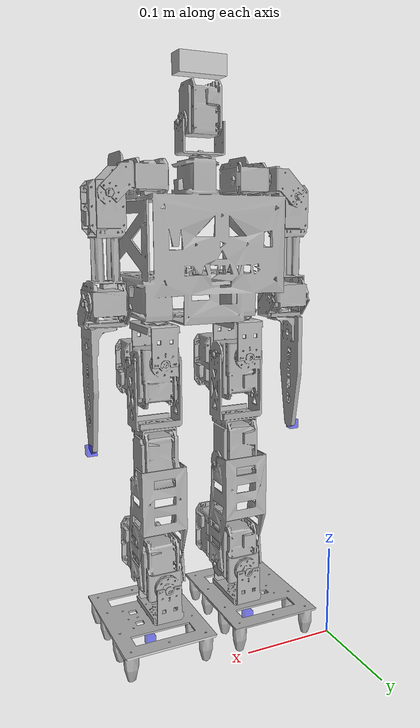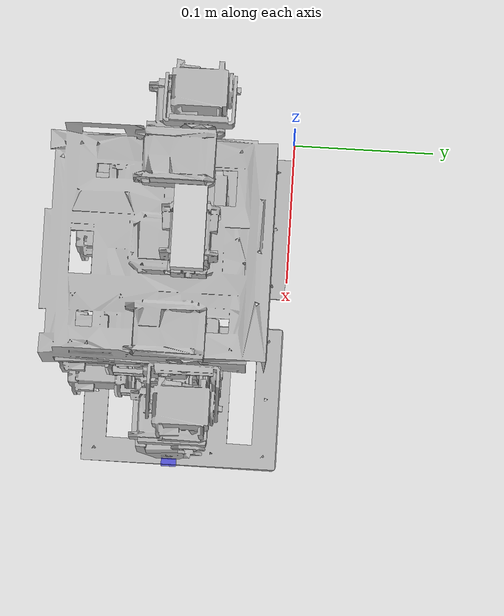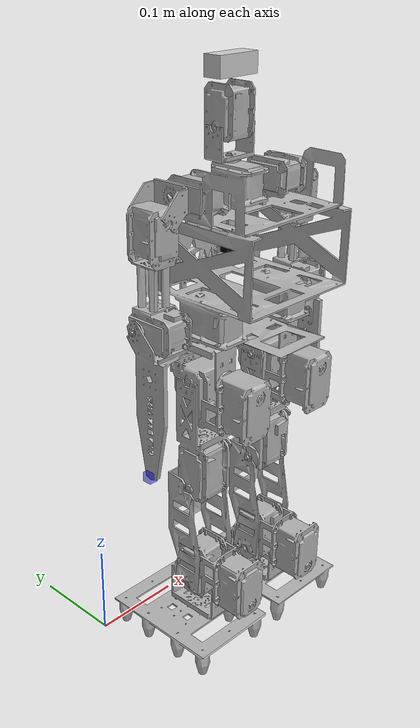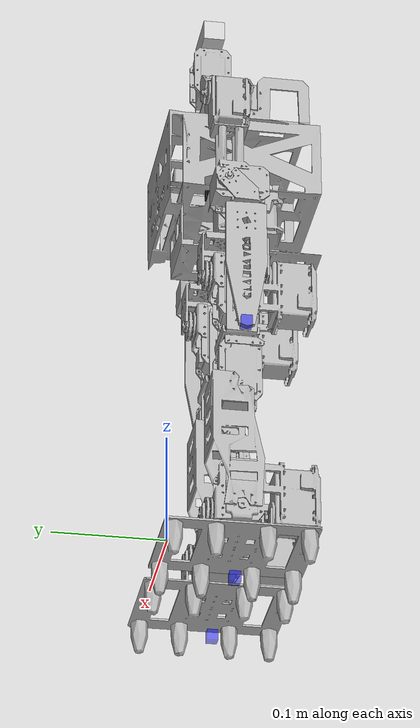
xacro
<?xml version="1.0" ?>
<robot name="darnet" xmlns:xacro="http://www.ros.org/wiki/xacro">

<xacro:include filename="$(find darnet_description)/urdf/materials.xacro" />
<xacro:include filename="$(find darnet_description)/urdf/darnet.trans" />
<xacro:include filename="$(find darnet_description)/urdf/darnet.gazebo" />

<link name="base_link">
  <inertial>
    <origin xyz="0.12558372774814963 -0.07386522357602478 0.43247306079321574" rpy="0 0 0"/>
    <mass value="1.2606121985073475"/>
    <inertia ixx="0.00507" iyy="0.006653" izz="0.003975" ixy="-1e-06" iyz="-0.00033" ixz="1e-06"/>
  </inertial>
  <visual>
    <origin xyz="0 0 0" rpy="0 0 0"/>
    <geometry>
      <mesh filename="file://$(find darnet_description)/meshes/base_link.stl" scale="0.001 0.001 0.001"/>
    </geometry>
    <material name="silver"/>
  </visual>
  <collision>
    <origin xyz="0 0 0" rpy="0 0 0"/>
    <geometry>
      <mesh filename="file://$(find darnet_description)/meshes/base_link.stl" scale="0.001 0.001 0.001"/>
    </geometry>
  </collision>
</link>

<link name="Konektor_Leher_1">
  <inertial>
    <origin xyz="2.0688434280435875e-06 -0.001021810988626845 0.006993774196732749" rpy="0 0 0"/>
    <mass value="0.004611932609017796"/>
    <inertia ixx="1e-06" iyy="2e-06" izz="2e-06" ixy="-0.0" iyz="-0.0" ixz="-0.0"/>
  </inertial>
  <visual>
    <origin xyz="-0.125659 0.060429 -0.520233" rpy="0 0 0"/>
    <geometry>
      <mesh filename="file://$(find darnet_description)/meshes/Konektor_Leher_1.stl" scale="0.001 0.001 0.001"/>
    </geometry>
    <material name="silver"/>
  </visual>
  <collision>
    <origin xyz="-0.125659 0.060429 -0.520233" rpy="0 0 0"/>
    <geometry>
      <mesh filename="file://$(find darnet_description)/meshes/Konektor_Leher_1.stl" scale="0.001 0.001 0.001"/>
    </geometry>
  </collision>
</link>

<link name="Kepala_4">
  <inertial>
    <origin xyz="-0.023069975045627494 -2.246644797637004e-05 0.011283371892922611" rpy="0 0 0"/>
    <mass value="0.07698316433626436"/>
    <inertia ixx="1.8e-05" iyy="2.2e-05" izz="1.4e-05" ixy="0.0" iyz="0.0" ixz="1e-06"/>
  </inertial>
  <visual>
    <origin xyz="-0.148159 0.060429 -0.548233" rpy="0 0 0"/>
    <geometry>
      <mesh filename="file://$(find darnet_description)/meshes/Kepala_4.stl" scale="0.001 0.001 0.001"/>
    </geometry>
    <material name="silver"/>
  </visual>
  <collision>
    <origin xyz="-0.148159 0.060429 -0.548233" rpy="0 0 0"/>
    <geometry>
      <mesh filename="file://$(find darnet_description)/meshes/Kepala_4.stl" scale="0.001 0.001 0.001"/>
    </geometry>
  </collision>
</link>

<link name="Konektor_Bahu__3">
  <inertial>
    <origin xyz="-0.00606107727430704 -2.4256193310728813e-06 -0.0026281598800894646" rpy="0 0 0"/>
    <mass value="0.013370649638707266"/>
    <inertia ixx="5e-06" iyy="2e-06" izz="5e-06" ixy="0.0" iyz="-0.0" ixz="-0.0"/>
  </inertial>
  <visual>
    <origin xyz="-0.048157 0.060473 -0.495956" rpy="0 0 0"/>
    <geometry>
      <mesh filename="file://$(find darnet_description)/meshes/Konektor_Bahu__3.stl" scale="0.001 0.001 0.001"/>
    </geometry>
    <material name="silver"/>
  </visual>
  <collision>
    <origin xyz="-0.048157 0.060473 -0.495956" rpy="0 0 0"/>
    <geometry>
      <mesh filename="file://$(find darnet_description)/meshes/Konektor_Bahu__3.stl" scale="0.001 0.001 0.001"/>
    </geometry>
  </collision>
</link>

<link name="Lengan_Kiri_1">
  <inertial>
    <origin xyz="-0.00013086119356749137 -0.026506786315672354 -0.05751019466023077" rpy="0 0 0"/>
    <mass value="0.17116519874710012"/>
    <inertia ixx="0.000371" iyy="0.00036" izz="4.1e-05" ixy="1e-06" iyz="-2.7e-05" ixz="-1e-06"/>
  </inertial>
  <visual>
    <origin xyz="-0.025647 0.037983 -0.479956" rpy="0 0 0"/>
    <geometry>
      <mesh filename="file://$(find darnet_description)/meshes/Lengan_Kiri_1.stl" scale="0.001 0.001 0.001"/>
    </geometry>
    <material name="silver"/>
  </visual>
  <collision>
    <origin xyz="-0.025647 0.037983 -0.479956" rpy="0 0 0"/>
    <geometry>
      <mesh filename="file://$(find darnet_description)/meshes/Lengan_Kiri_1.stl" scale="0.001 0.001 0.001"/>
    </geometry>
  </collision>
</link>

<link name="Tangan_Kiri_1">
  <inertial>
    <origin xyz="0.011339328658166777 -0.015504928701510053 -0.06337227994434125" rpy="0 0 0"/>
    <mass value="0.0269625458307887"/>
    <inertia ixx="4.6e-05" iyy="4.6e-05" izz="5e-06" ixy="-0.0" iyz="-1e-06" ixz="-4e-06"/>
  </inertial>
  <visual>
    <origin xyz="-0.002306 0.057344 -0.377156" rpy="0 0 0"/>
    <geometry>
      <mesh filename="file://$(find darnet_description)/meshes/Tangan_Kiri_1.stl" scale="0.001 0.001 0.001"/>
    </geometry>
    <material name="silver"/>
  </visual>
  <collision>
    <origin xyz="-0.002306 0.057344 -0.377156" rpy="0 0 0"/>
    <geometry>
      <mesh filename="file://$(find darnet_description)/meshes/Tangan_Kiri_1.stl" scale="0.001 0.001 0.001"/>
    </geometry>
  </collision>
</link>

<link name="Konektor_Bahu__1">
  <inertial>
    <origin xyz="0.00606151229686161 3.1019412610397423e-06 -0.0026281598800157457" rpy="0 0 0"/>
    <mass value="0.013370649638707266"/>
    <inertia ixx="5e-06" iyy="2e-06" izz="5e-06" ixy="0.0" iyz="0.0" ixz="0.0"/>
  </inertial>
  <visual>
    <origin xyz="-0.202784 0.0604 -0.495956" rpy="0 0 0"/>
    <geometry>
      <mesh filename="file://$(find darnet_description)/meshes/Konektor_Bahu__1.stl" scale="0.001 0.001 0.001"/>
    </geometry>
    <material name="silver"/>
  </visual>
  <collision>
    <origin xyz="-0.202784 0.0604 -0.495956" rpy="0 0 0"/>
    <geometry>
      <mesh filename="file://$(find darnet_description)/meshes/Konektor_Bahu__1.stl" scale="0.001 0.001 0.001"/>
    </geometry>
  </collision>
</link>

<link name="Lengan_Kanan_1">
  <inertial>
    <origin xyz="0.00012193183188854984 -0.026506781431681246 -0.057529773048220934" rpy="0 0 0"/>
    <mass value="0.1711650369680945"/>
    <inertia ixx="0.000371" iyy="0.00036" izz="4.1e-05" ixy="-1e-06" iyz="-2.7e-05" ixz="1e-06"/>
  </inertial>
  <visual>
    <origin xyz="-0.225273 0.037889 -0.479956" rpy="0 0 0"/>
    <geometry>
      <mesh filename="file://$(find darnet_description)/meshes/Lengan_Kanan_1.stl" scale="0.001 0.001 0.001"/>
    </geometry>
    <material name="silver"/>
  </visual>
  <collision>
    <origin xyz="-0.225273 0.037889 -0.479956" rpy="0 0 0"/>
    <geometry>
      <mesh filename="file://$(find darnet_description)/meshes/Lengan_Kanan_1.stl" scale="0.001 0.001 0.001"/>
    </geometry>
  </collision>
</link>

<link name="Tangan_Kanan_1">
  <inertial>
    <origin xyz="-0.011290622269202216 -0.01551524802309219 -0.06343011298331658" rpy="0 0 0"/>
    <mass value="0.02693800769983268"/>
    <inertia ixx="4.6e-05" iyy="4.6e-05" izz="5e-06" ixy="0.0" iyz="-1e-06" ixz="4e-06"/>
  </inertial>
  <visual>
    <origin xyz="-0.248632 0.057228 -0.377156" rpy="0 0 0"/>
    <geometry>
      <mesh filename="file://$(find darnet_description)/meshes/Tangan_Kanan_1.stl" scale="0.001 0.001 0.001"/>
    </geometry>
    <material name="silver"/>
  </visual>
  <collision>
    <origin xyz="-0.248632 0.057228 -0.377156" rpy="0 0 0"/>
    <geometry>
      <mesh filename="file://$(find darnet_description)/meshes/Tangan_Kanan_1.stl" scale="0.001 0.001 0.001"/>
    </geometry>
  </collision>
</link>

<link name="Paha_Atas_4">
  <inertial>
    <origin xyz="3.147572238682006e-07 -0.0037567260476663727 -0.008402665786692576" rpy="0 0 0"/>
    <mass value="0.023003093100536335"/>
    <inertia ixx="1.7e-05" iyy="6e-06" izz="1.6e-05" ixy="0.0" iyz="0.0" ixz="0.0"/>
  </inertial>
  <visual>
    <origin xyz="-0.078463 0.069966 -0.351036" rpy="0 0 0"/>
    <geometry>
      <mesh filename="file://$(find darnet_description)/meshes/Paha_Atas_4.stl" scale="0.001 0.001 0.001"/>
    </geometry>
    <material name="silver"/>
  </visual>
  <collision>
    <origin xyz="-0.078463 0.069966 -0.351036" rpy="0 0 0"/>
    <geometry>
      <mesh filename="file://$(find darnet_description)/meshes/Paha_Atas_4.stl" scale="0.001 0.001 0.001"/>
    </geometry>
  </collision>
</link>

<link name="Paha_Atas_3">
  <inertial>
    <origin xyz="3.042894422544684e-07 -0.003756270259775832 -0.008402665786691743" rpy="0 0 0"/>
    <mass value="0.023003093100536335"/>
    <inertia ixx="1.7e-05" iyy="6e-06" izz="1.6e-05" ixy="0.0" iyz="0.0" ixz="0.0"/>
  </inertial>
  <visual>
    <origin xyz="-0.172863 0.069922 -0.351036" rpy="0 0 0"/>
    <geometry>
      <mesh filename="file://$(find darnet_description)/meshes/Paha_Atas_3.stl" scale="0.001 0.001 0.001"/>
    </geometry>
    <material name="silver"/>
  </visual>
  <collision>
    <origin xyz="-0.172863 0.069922 -0.351036" rpy="0 0 0"/>
    <geometry>
      <mesh filename="file://$(find darnet_description)/meshes/Paha_Atas_3.stl" scale="0.001 0.001 0.001"/>
    </geometry>
  </collision>
</link>

<link name="Paha_Kanan_1">
  <inertial>
    <origin xyz="-0.00021480536619081225 0.002537579495970735 -0.01489853149850151" rpy="0 0 0"/>
    <mass value="0.2700348906538629"/>
    <inertia ixx="0.000292" iyy="0.000103" izz="0.000254" ixy="1e-06" iyz="-8e-06" ixz="2e-06"/>
  </inertial>
  <visual>
    <origin xyz="-0.172863 0.102775 -0.314491" rpy="0 0 0"/>
    <geometry>
      <mesh filename="file://$(find darnet_description)/meshes/Paha_Kanan_1.stl" scale="0.001 0.001 0.001"/>
    </geometry>
    <material name="silver"/>
  </visual>
  <collision>
    <origin xyz="-0.172863 0.102775 -0.314491" rpy="0 0 0"/>
    <geometry>
      <mesh filename="file://$(find darnet_description)/meshes/Paha_Kanan_1.stl" scale="0.001 0.001 0.001"/>
    </geometry>
  </collision>
</link>

<link name="Paha_Kiri_1">
  <inertial>
    <origin xyz="0.00021542574225456856 0.002537123815664344 -0.014898530730865556" rpy="0 0 0"/>
    <mass value="0.2700348875358617"/>
    <inertia ixx="0.000292" iyy="0.000103" izz="0.000254" ixy="-1e-06" iyz="-8e-06" ixz="-2e-06"/>
  </inertial>
  <visual>
    <origin xyz="-0.078463 0.102819 -0.314491" rpy="0 0 0"/>
    <geometry>
      <mesh filename="file://$(find darnet_description)/meshes/Paha_Kiri_1.stl" scale="0.001 0.001 0.001"/>
    </geometry>
    <material name="silver"/>
  </visual>
  <collision>
    <origin xyz="-0.078463 0.102819 -0.314491" rpy="0 0 0"/>
    <geometry>
      <mesh filename="file://$(find darnet_description)/meshes/Paha_Kiri_1.stl" scale="0.001 0.001 0.001"/>
    </geometry>
  </collision>
</link>

<link name="Lutut_Kiri__1">
  <inertial>
    <origin xyz="-0.025112877336030306 -3.665256441831577e-05 -0.09965736782617046" rpy="0 0 0"/>
    <mass value="0.1500785948281333"/>
    <inertia ixx="0.000115" iyy="0.00013" izz="4.1e-05" ixy="-0.0" iyz="0.0" ixz="2e-06"/>
  </inertial>
  <visual>
    <origin xyz="-0.103763 0.076419 -0.314491" rpy="0 0 0"/>
    <geometry>
      <mesh filename="file://$(find darnet_description)/meshes/Lutut_Kiri__1.stl" scale="0.001 0.001 0.001"/>
    </geometry>
    <material name="silver"/>
  </visual>
  <collision>
    <origin xyz="-0.103763 0.076419 -0.314491" rpy="0 0 0"/>
    <geometry>
      <mesh filename="file://$(find darnet_description)/meshes/Lutut_Kiri__1.stl" scale="0.001 0.001 0.001"/>
    </geometry>
  </collision>
</link>

<link name="Lutut_Kanan_1">
  <inertial>
    <origin xyz="0.025114157977644408 -3.618313323237865e-05 -0.09978547593511305" rpy="0 0 0"/>
    <mass value="0.15033536763472963"/>
    <inertia ixx="0.000116" iyy="0.000131" izz="4.1e-05" ixy="0.0" iyz="0.0" ixz="-2e-06"/>
  </inertial>
  <visual>
    <origin xyz="-0.147563 0.076375 -0.314491" rpy="0 0 0"/>
    <geometry>
      <mesh filename="file://$(find darnet_description)/meshes/Lutut_Kanan_1.stl" scale="0.001 0.001 0.001"/>
    </geometry>
    <material name="silver"/>
  </visual>
  <collision>
    <origin xyz="-0.147563 0.076375 -0.314491" rpy="0 0 0"/>
    <geometry>
      <mesh filename="file://$(find darnet_description)/meshes/Lutut_Kanan_1.stl" scale="0.001 0.001 0.001"/>
    </geometry>
  </collision>
</link>

<link name="Betis_2">
  <inertial>
    <origin xyz="-0.0255001643322538 0.010088407478548958 -0.0481478394535908" rpy="0 0 0"/>
    <mass value="0.05374458454507306"/>
    <inertia ixx="8.6e-05" iyy="0.000102" izz="3.8e-05" ixy="-0.0" iyz="-1.4e-05" ixz="0.0"/>
  </inertial>
  <visual>
    <origin xyz="-0.103563 0.076419 -0.191691" rpy="0 0 0"/>
    <geometry>
      <mesh filename="file://$(find darnet_description)/meshes/Betis_2.stl" scale="0.001 0.001 0.001"/>
    </geometry>
    <material name="silver"/>
  </visual>
  <collision>
    <origin xyz="-0.103563 0.076419 -0.191691" rpy="0 0 0"/>
    <geometry>
      <mesh filename="file://$(find darnet_description)/meshes/Betis_2.stl" scale="0.001 0.001 0.001"/>
    </geometry>
  </collision>
</link>

<link name="Betis_1">
  <inertial>
    <origin xyz="0.02549978337890421 0.010088863266438167 -0.04814779127699462" rpy="0 0 0"/>
    <mass value="0.05374458454507306"/>
    <inertia ixx="8.6e-05" iyy="0.000102" izz="3.8e-05" ixy="-0.0" iyz="-1.4e-05" ixz="0.0"/>
  </inertial>
  <visual>
    <origin xyz="-0.147764 0.076375 -0.191491" rpy="0 0 0"/>
    <geometry>
      <mesh filename="file://$(find darnet_description)/meshes/Betis_1.stl" scale="0.001 0.001 0.001"/>
    </geometry>
    <material name="silver"/>
  </visual>
  <collision>
    <origin xyz="-0.147764 0.076375 -0.191491" rpy="0 0 0"/>
    <geometry>
      <mesh filename="file://$(find darnet_description)/meshes/Betis_1.stl" scale="0.001 0.001 0.001"/>
    </geometry>
  </collision>
</link>

<link name="Mata_Kaki_Kiri_1">
  <inertial>
    <origin xyz="-0.0250848145706217 -0.023862876063146687 0.014898886388721236" rpy="0 0 0"/>
    <mass value="0.2700348860007671"/>
    <inertia ixx="0.000292" iyy="0.000103" izz="0.000254" ixy="-1e-06" iyz="8e-06" ixz="2e-06"/>
  </inertial>
  <visual>
    <origin xyz="-0.103563 0.076419 -0.070562" rpy="0 0 0"/>
    <geometry>
      <mesh filename="file://$(find darnet_description)/meshes/Mata_Kaki_Kiri_1.stl" scale="0.001 0.001 0.001"/>
    </geometry>
    <material name="silver"/>
  </visual>
  <collision>
    <origin xyz="-0.103563 0.076419 -0.070562" rpy="0 0 0"/>
    <geometry>
      <mesh filename="file://$(find darnet_description)/meshes/Mata_Kaki_Kiri_1.stl" scale="0.001 0.001 0.001"/>
    </geometry>
  </collision>
</link>

<link name="Kaki_Kiri_1">
  <inertial>
    <origin xyz="-0.011691787921598959 0.032349452000470805 -0.045024006435255864" rpy="0 0 0"/>
    <mass value="0.1717468200028094"/>
    <inertia ixx="0.000318" iyy="0.000239" izz="0.000512" ixy="1e-06" iyz="1e-06" ixz="-5e-06"/>
  </inertial>
  <visual>
    <origin xyz="-0.078263 0.102819 -0.070562" rpy="0 0 0"/>
    <geometry>
      <mesh filename="file://$(find darnet_description)/meshes/Kaki_Kiri_1.stl" scale="0.001 0.001 0.001"/>
    </geometry>
    <material name="silver"/>
  </visual>
  <collision>
    <origin xyz="-0.014 0.032 -0.0393" rpy="0 0 0"/>
    <geometry>
      <box size="0.1 0.135 0.0025"/>
    </geometry>
  </collision>
</link>

<link name="Mata_Kaki_Kanan_1">
  <inertial>
    <origin xyz="0.02508443305396857 -0.023862420089463807 0.014898933384952032" rpy="0 0 0"/>
    <mass value="0.2700348872645348"/>
    <inertia ixx="0.000292" iyy="0.000103" izz="0.000254" ixy="1e-06" iyz="8e-06" ixz="-2e-06"/>
  </inertial>
  <visual>
    <origin xyz="-0.147764 0.076375 -0.070362" rpy="0 0 0"/>
    <geometry>
      <mesh filename="file://$(find darnet_description)/meshes/Mata_Kaki_Kanan_1.stl" scale="0.001 0.001 0.001"/>
    </geometry>
    <material name="silver"/>
  </visual>
  <collision>
    <origin xyz="-0.147764 0.076375 -0.070362" rpy="0 0 0"/>
    <geometry>
      <mesh filename="file://$(find darnet_description)/meshes/Mata_Kaki_Kanan_1.stl" scale="0.001 0.001 0.001"/>
    </geometry>
  </collision>
</link>

<link name="Kaki_Kanan_1">
  <inertial>
    <origin xyz="0.011691406968182633 0.032349907788483595 -0.0450239582586032" rpy="0 0 0"/>
    <mass value="0.17174682000280467"/>
    <inertia ixx="0.000318" iyy="0.000239" izz="0.000512" ixy="-1e-06" iyz="1e-06" ixz="5e-06"/>
  </inertial>
  <visual>
    <origin xyz="-0.173064 0.102775 -0.070362" rpy="0 0 0"/>
    <geometry>
      <mesh filename="file://$(find darnet_description)/meshes/Kaki_Kanan_1.stl" scale="0.001 0.001 0.001"/>
    </geometry>
    <material name="silver"/>
  </visual>
  <collision>
    <origin xyz="0.014 0.032 -0.0393" rpy="0 0 0"/>
    <geometry>
      <box size="0.1 0.135 0.0025"/>
    </geometry>
  </collision>
</link>

<link name="End_Effector_Tangan_Kanan_1">
  <inertial>
    <origin xyz="0 0 0" rpy="0 0 0"/>
    <mass value="0.001"/> <inertia ixx="0.0001" iyy="0.0001" izz="0.0001" ixy="0" iyz="0" ixz="0"/>
  </inertial>

    <visual>
    <origin xyz="0 0 0" rpy="0 0 0"/>
    <geometry>
       <box size="0.01 0.01 0.01"/>
    </geometry>
    <material name="blue">
        <color rgba="0 0 1 0.5"/>
    </material>
  </visual>

</link>

<link name="End_Effector_Kaki_Kanan_1">
  <inertial>
    <origin xyz="0 0 0" rpy="0 0 0"/>
    <mass value="0.001"/>
    <inertia ixx="0.0001" iyy="0.0001" izz="0.0001" ixy="0" iyz="0" ixz="0"/>
  </inertial>

  <visual>
    <origin xyz="0 0 0" rpy="0 0 0"/>
    <geometry>
       <box size="0.01 0.01 0.01"/>
    </geometry>
    <material name="blue">
        <color rgba="0 0 1 0.5"/>
    </material>
  </visual>
</link>

<link name="End_Effector_Kaki_Kiri_1">
  <inertial>
    <origin xyz="0 0 0" rpy="0 0 0"/>
    <mass value="0.001"/>
    <inertia ixx="0.0001" iyy="0.0001" izz="0.0001" ixy="0" iyz="0" ixz="0"/>
  </inertial>

  <visual>
    <origin xyz="0 0 0" rpy="0 0 0"/>
    <geometry>
       <box size="0.01 0.01 0.01"/>
    </geometry>
    <material name="blue">
        <color rgba="0 0 1 0.5"/>
    </material>
  </visual>
</link>

<link name="End_Effector_Tangan_Kiri_1">
  <inertial>
    <origin xyz="0 0 0" rpy="0 0 0"/>
    <mass value="0.001"/>
    <inertia ixx="0.0001" iyy="0.0001" izz="0.0001" ixy="0" iyz="0" ixz="0"/>
  </inertial>

  <visual>
    <origin xyz="0 0 0" rpy="0 0 0"/>
    <geometry>
       <box size="0.01 0.01 0.01"/>
    </geometry>
    <material name="blue">
        <color rgba="0 0 1 0.5"/>
    </material>
  </visual>
</link>

<!-- LINK SENSOR IMU -->
<joint name="imu_joint" type="fixed">
    <parent link="base_link"/>
    <child link="imu_link"/>
     <origin xyz="0.125659 -0.060429 0.4320233" rpy="0 0 0"/>
  </joint>

  <link name="imu_link">
    <visual>
      <geometry>
        <box size="0.01 0.01 0.01"/> </geometry>
      <material name="black">
        <color rgba="0 0 0 1"/>
      </material>
    </visual>

    <inertial>
      <mass value="0.01"/>
      <inertia ixx="0.0001" ixy="0" ixz="0" iyy="0.0001" iyz="0" izz="0.0001"/>
    </inertial>
  </link>

<!-- LINK KAMERA -->
<joint name="camera_joint" type="fixed">
    <parent link="Kepala_4"/>
    <child link="camera_link"/>
    <origin xyz="-0.0225 0.0 0.05379" rpy="0 0 1.5707"/>
  </joint>

  <link name="camera_link">
    <visual>
      <geometry>
        <box size="0.02 0.05 0.02"/>
      </geometry>
      <material name="silver">
        <color rgba="0.8 0.8 0.8 1"/>
      </material>
    </visual>

    <collision>
      <geometry>
        <box size="0.02 0.05 0.02"/>
      </geometry>
    </collision>

    <inertial>
      <mass value="0.01"/>
      <inertia ixx="0.0001" ixy="0" ixz="0" iyy="0.0001" iyz="0" izz="0.0001"/>
    </inertial>
  </link>

  <joint name="camera_optical_joint" type="fixed">
    <parent link="camera_link"/>
    <child link="camera_link_optical"/>
    <origin xyz="0 0 0" rpy="-1.5707 0 -1.5707"/>
  </joint>

  <link name="camera_link_optical"></link>

<joint name="Leher Putar" type="revolute">
  <origin xyz="0.125659 -0.060429 0.520233" rpy="0 0 0"/>
  <parent link="base_link"/>
  <child link="Konektor_Leher_1"/>
  <axis xyz="0.0 0.0 -1.0"/>
  <dynamics damping="0.5"/>
  <limit lower="-3.14159" upper="3.14159"  effort="10" velocity="6"/>
</joint>

<joint name="Kepala Putar" type="revolute">
  <origin xyz="0.0225 0.0 0.028" rpy="0 0 0"/>
  <parent link="Konektor_Leher_1"/>
  <child link="Kepala_4"/>
  <axis xyz="-1.0 -0.0 -0.0"/>
  <dynamics damping="0.5"/>
  <limit lower="-3.14159" upper="3.14159"  effort="10" velocity="6"/>
</joint>

<joint name="Lengan Kiri" type="revolute">
  <origin xyz="0.048157 -0.060473 0.495956" rpy="0 0 0"/>
  <parent link="base_link"/>
  <child link="Konektor_Bahu__3"/>
  <axis xyz="1.0 0.000471 0.0"/>
  <dynamics damping="1.5"/>
  <limit lower="-3.14159" upper="3.14159"  effort="10" velocity="6"/>
</joint>

<joint name="Bahu Tangan Kiri" type="revolute">
  <origin xyz="-0.02251 0.02249 -0.016" rpy="0 0 0"/>
  <parent link="Konektor_Bahu__3"/>
  <child link="Lengan_Kiri_1"/>
  <axis xyz="-0.000471 1.0 0.0"/>
  <dynamics damping="1.5"/>
  <limit lower="-3.14159" upper="3.14159"  effort="10" velocity="6"/>
</joint>

<joint name="Tangan Kiri" type="revolute">
  <origin xyz="-0.023341 -0.019361 -0.1028" rpy="0 0 0"/>
  <parent link="Lengan_Kiri_1"/>
  <child link="Tangan_Kiri_1"/>
  <axis xyz="1.0 0.000471 0.0"/>
  <dynamics damping="0.3"/>
  <limit lower="-3.14159" upper="3.14159"  effort="10" velocity="6"/>
</joint>

<joint name="Lengan Kanan" type="revolute">
  <origin xyz="0.202784 -0.0604 0.495956" rpy="0 0 0"/>
  <parent link="base_link"/>
  <child link="Konektor_Bahu__1"/>
  <axis xyz="-1.0 -0.000471 -0.0"/>
  <dynamics damping="1.5"/>
  <limit lower="-3.14159" upper="3.14159"  effort="10" velocity="6"/>
</joint>

<joint name="Bahu Tangan Kanan" type="revolute">
  <origin xyz="0.022489 0.022511 -0.016" rpy="0 0 0"/>
  <parent link="Konektor_Bahu__1"/>
  <child link="Lengan_Kanan_1"/>
  <axis xyz="0.000471 -1.0 -0.0"/>
  <dynamics damping="1.5"/>
  <limit lower="-3.14159" upper="3.14159"  effort="10" velocity="6"/>
</joint>

<joint name="Tangan Kanan" type="revolute">
  <origin xyz="0.023359 -0.019339 -0.1028" rpy="0 0 0"/>
  <parent link="Lengan_Kanan_1"/>
  <child link="Tangan_Kanan_1"/>
  <axis xyz="-1.0 -0.000471 -0.0"/>
  <dynamics damping="0.3"/>
  <limit lower="-3.14159" upper="3.14159" effort="10" velocity="6"/>
</joint>

<joint name="Paha Kiri Putar" type="revolute">
  <origin xyz="0.078463 -0.069966 0.351036" rpy="0 0 0"/>
  <parent link="base_link"/>
  <child link="Paha_Atas_4"/>
  <axis xyz="-0.0 -0.0 1.0"/>
  <dynamics damping="5.0"/>
  <limit lower="-3.14159" upper="3.14159"  effort="40" velocity="6"/>
</joint>

<joint name="Paha Kanan Putar" type="revolute">
  <origin xyz="0.172863 -0.069922 0.351036" rpy="0 0 0"/>
  <parent link="base_link"/>
  <child link="Paha_Atas_3"/>
  <axis xyz="-0.0 -0.0 1.0"/>
  <dynamics damping="5.0"/>
  <limit lower="-3.14159" upper="3.14159"  effort="40" velocity="6"/>
</joint>

<joint name="Paha Atas Kanan" type="revolute">
  <origin xyz="0.0 -0.032853 -0.036545" rpy="0 0 0"/>
  <parent link="Paha_Atas_3"/>
  <child link="Paha_Kanan_1"/>
  <axis xyz="0.0 -1.0 -0.0"/>
  <dynamics damping="5.0"/>
  <limit lower="-3.14159" upper="3.14159"  effort="40" velocity="6"/>
</joint>

<joint name="Paha Atas Kiri" type="revolute">
  <origin xyz="0.0 -0.032853 -0.036545" rpy="0 0 0"/>
  <parent link="Paha_Atas_4"/>
  <child link="Paha_Kiri_1"/>
  <axis xyz="0.0 -1.0 -0.0"/>
  <dynamics damping="5.0"/>
  <limit lower="-3.14159" upper="3.14159"  effort="40" velocity="6"/>
</joint>

<joint name="Paha Bawah Kiri" type="revolute">
  <origin xyz="0.0253 0.0264 0.0" rpy="0 0 0"/>
  <parent link="Paha_Kiri_1"/>
  <child link="Lutut_Kiri__1"/>
  <axis xyz="-1.0 0.0 -0.0"/>
  <dynamics damping="3.0"/>
  <limit lower="-3.14159" upper="3.14159"  effort="55" velocity="6"/>
</joint>

<joint name="Paha Bawah Kanan" type="revolute">
  <origin xyz="-0.0253 0.0264 0.0" rpy="0 0 0"/>
  <parent link="Paha_Kanan_1"/>
  <child link="Lutut_Kanan_1"/>
  <axis xyz="1.0 0.0 0.0"/>
  <dynamics damping="3.0"/>
  <limit lower="-3.14159" upper="3.14159"  effort="55" velocity="6"/>
</joint>

<joint name="Lutut Kiri" type="revolute">
  <origin xyz="-0.0002 0.0 -0.1228" rpy="0 0 0"/>
  <parent link="Lutut_Kiri__1"/>
  <child link="Betis_2"/>
  <axis xyz="-1.0 -0.0 -0.0"/>
  <dynamics damping="3.0"/>
  <limit lower="-3.14159" upper="3.14159"  effort="55" velocity="6"/>
</joint>

<joint name="Lutut Kanan" type="revolute">
  <origin xyz="0.000201 0.0 -0.123" rpy="0 0 0"/>
  <parent link="Lutut_Kanan_1"/>
  <child link="Betis_1"/>
  <axis xyz="1.0 0.0 0.0"/>
  <dynamics damping="3.0"/>
  <limit lower="-3.14159" upper="3.14159"  effort="55" velocity="6"/>
</joint>

<joint name="Kaki Kiri Atas" type="revolute">
  <origin xyz="0.0 0.0 -0.121129" rpy="0 0 0"/>
  <parent link="Betis_2"/>
  <child link="Mata_Kaki_Kiri_1"/>
  <axis xyz="-1.0 -0.0 -0.0"/>
  <dynamics damping="1.0"/>
  <limit lower="-3.14159" upper="3.14159"  effort="25" velocity="6"/>
</joint>

<joint name="Kaki Kiri Bawah" type="revolute">
  <origin xyz="-0.0253 -0.0264 0.0" rpy="0 0 0"/>
  <parent link="Mata_Kaki_Kiri_1"/>
  <child link="Kaki_Kiri_1"/>
  <axis xyz="0.0 -1.0 0.0"/>
  <dynamics damping="1.0"/>
  <limit lower="-3.14159" upper="3.14159"  effort="25" velocity="6"/>
</joint>

<joint name="Kaki Kanan Atas" type="revolute">
  <origin xyz="0.0 0.0 -0.121129" rpy="0 0 0"/>
  <parent link="Betis_1"/>
  <child link="Mata_Kaki_Kanan_1"/>
  <axis xyz="1.0 0.0 0.0"/>
  <dynamics damping="1.0"/>
  <limit lower="-3.14159" upper="3.14159"  effort="25" velocity="6"/>
</joint>

<joint name="Kaki Kanan Bawah" type="revolute">
  <origin xyz="0.0253 -0.0264 0.0" rpy="0 0 0"/>
  <parent link="Mata_Kaki_Kanan_1"/>
  <child link="Kaki_Kanan_1"/>
  <axis xyz="0.0 -1.0 0.0"/>
  <dynamics damping="1.0"/>
  <limit lower="-3.14159" upper="3.14159"  effort="25" velocity="6"/>
</joint>

<joint name="joint_end_effector_kanan" type="fixed">
  <parent link="Tangan_Kanan_1"/>

  <child link="End_Effector_Tangan_Kanan_1"/>

  <origin xyz="-0.005 -0.015 -0.15" rpy="0 0 0"/>
</joint>

<joint name="joint_tapak_kaki_kanan" type="fixed">
  <parent link="Kaki_Kanan_1"/>

  <child link="End_Effector_Kaki_Kanan_1"/>

  <origin xyz="0.013 0.0325 -0.069" rpy="0 0 0"/>
</joint>

<joint name="joint_tapak_kaki_kiri" type="fixed">
  <parent link="Kaki_Kiri_1"/>

  <child link="End_Effector_Kaki_Kiri_1"/>

  <origin xyz="-0.013 0.0325 -0.069" rpy="0 0 0"/>
</joint>

<joint name="joint_end_effector_kiri" type="fixed">
  <parent link="Tangan_Kiri_1"/>

  <child link="End_Effector_Tangan_Kiri_1"/>

  <origin xyz="0.005 -0.015 -0.15" rpy="0 0 0"/>
</joint>

<!-- ROS2 Control -->
<ros2_control name="IgnitionSystem" type="system">
  <hardware>
    <plugin>ign_ros2_control/IgnitionSystem</plugin>
  </hardware>

  <!-- Joint 1 -->
  <joint name="Leher Putar">
    <command_interface name="position">
      <param name="min">-3.14159</param>
      <param name="max">3.14159</param>
    </command_interface>
    <state_interface name="position">
      <param name="initial_value">0</param>
    </state_interface>
  </joint>
  <!-- Joint 2 -->
  <joint name="Kepala Putar">
    <command_interface name="position">
      <param name="min">-1.5708</param>
      <param name="max">1.5708</param>
    </command_interface>
    <state_interface name="position">
      <param name="initial_value">0</param>
      <param name="min">-1.5708</param>
      <param name="max">1.5708</param>
    </state_interface>
  </joint>

  <!-- Joint 3 -->
  <joint name="Paha Atas Kanan">
    <command_interface name="position">
      <param name="min">-3.14159</param>
      <param name="max">3.14159</param>
    </command_interface>
    <state_interface name="position">
      <param name="initial_value">0</param>
    </state_interface>
  </joint>

  <!-- Joint 4 -->
  <joint name="Paha Atas Kiri">
    <command_interface name="position">
      <param name="min">-3.14159</param>
      <param name="max">3.14159</param>
    </command_interface>
    <state_interface name="position">
      <param name="initial_value">0</param>
    </state_interface>
  </joint>

  <!-- Joint 5 -->
  <joint name="Paha Kanan Putar">
    <command_interface name="position">
      <param name="min">-3.14159</param>
      <param name="max">3.14159</param>
    </command_interface>
    <state_interface name="position">
      <param name="initial_value">0</param>
    </state_interface>
  </joint>

  <!-- Joint 6 -->
  <joint name="Paha Kiri Putar">
    <command_interface name="position">
      <param name="min">-3.14159</param>
      <param name="max">3.14159</param>
    </command_interface>
    <state_interface name="position">
      <param name="initial_value">0</param>
    </state_interface>
  </joint>

  <!-- Joint 7 -->
  <joint name="Paha Bawah Kanan">
    <command_interface name="position">
      <param name="min">-3.14159</param>
      <param name="max">3.14159</param>
    </command_interface>
    <state_interface name="position">
      <param name="initial_value">0</param>
    </state_interface>
  </joint>

  <!-- Joint 8 -->
  <joint name="Paha Bawah Kiri">
    <command_interface name="position">
      <param name="min">-3.14159</param>
      <param name="max">3.14159</param>
    </command_interface>
    <state_interface name="position">
      <param name="initial_value">0</param>
    </state_interface>
  </joint>

  <!-- Joint 9 -->
  <joint name="Lutut Kanan">
    <command_interface name="position">
      <param name="min">-3.14159</param>
      <param name="max">3.14159</param>
    </command_interface>
    <state_interface name="position">
      <param name="initial_value">0</param>
    </state_interface>
  </joint>

  <!-- Joint 10 -->
  <joint name="Lutut Kiri">
    <command_interface name="position">
      <param name="min">-3.14159</param>
      <param name="max">3.14159</param>
    </command_interface>
    <state_interface name="position">
      <param name="initial_value">0</param>
    </state_interface>
  </joint>

  <!-- Joint 11 -->
  <joint name="Kaki Kanan Atas">
    <command_interface name="position">
      <param name="min">-3.14159</param>
      <param name="max">3.14159</param>
    </command_interface>
    <state_interface name="position">
      <param name="initial_value">0</param>
    </state_interface>
  </joint>

  <!-- Joint 12 -->
  <joint name="Kaki Kiri Atas">
    <command_interface name="position">
      <param name="min">-3.14159</param>
      <param name="max">3.14159</param>
    </command_interface>
    <state_interface name="position">
      <param name="initial_value">0</param>
    </state_interface>
  </joint>

  <!-- Joint 13 -->
  <joint name="Kaki Kanan Bawah">
    <command_interface name="position">
      <param name="min">-3.14159</param>
      <param name="max">3.14159</param>
    </command_interface>
    <state_interface name="position">
      <param name="initial_value">0</param>
    </state_interface>
  </joint>

  <!-- Joint 14 -->
  <joint name="Kaki Kiri Bawah">
    <command_interface name="position">
      <param name="min">-3.14159</param>
      <param name="max">3.14159</param>
    </command_interface>
    <state_interface name="position">
      <param name="initial_value">0</param>
    </state_interface>
  </joint>

  <!-- Joint 15 -->
  <joint name="Lengan Kiri">
    <command_interface name="position">
      <param name="min">-3.14159</param>
      <param name="max">3.14159</param>
    </command_interface>
    <state_interface name="position">
      <param name="initial_value">0</param>
    </state_interface>
  </joint>

  <!-- Joint 16 -->
  <joint name="Bahu Tangan Kiri">
    <command_interface name="position">
      <param name="min">-3.14159</param>
      <param name="max">3.14159</param>
    </command_interface>
    <state_interface name="position">
      <param name="initial_value">0</param>
    </state_interface>
  </joint>

  <!-- Joint 17 -->
  <joint name="Tangan Kiri">
    <command_interface name="position">
      <param name="min">-3.14159</param>
      <param name="max">3.14159</param>
    </command_interface>
    <state_interface name="position">
      <param name="initial_value">0</param>
    </state_interface>
  </joint>

  <!-- Joint 18 -->
  <joint name="Lengan Kanan">
    <command_interface name="position">
      <param name="min">-3.14159</param>
      <param name="max">3.14159</param>
    </command_interface>
    <state_interface name="position">
      <param name="initial_value">0</param>
    </state_interface>
  </joint>

  <!-- Joint 19 -->
  <joint name="Bahu Tangan Kanan">
    <command_interface name="position">
      <param name="min">-3.14159</param>
      <param name="max">3.14159</param>
    </command_interface>
    <state_interface name="position">
      <param name="initial_value">0</param>
    </state_interface>
  </joint>

  <!-- Joint 20 -->
  <joint name="Tangan Kanan">
    <command_interface name="position">
      <param name="min">-3.14159</param>
      <param name="max">3.14159</param>
    </command_interface>
    <state_interface name="position">
      <param name="initial_value">0</param>
    </state_interface>
  </joint>

  <sensor name="imu_sensor">
    <state_interface name="orientation.x"/>
    <state_interface name="orientation.y"/>
    <state_interface name="orientation.z"/>
    <state_interface name="orientation.w"/>
    <state_interface name="angular_velocity.x"/>
    <state_interface name="angular_velocity.y"/>
    <state_interface name="angular_velocity.z"/>
    <state_interface name="linear_acceleration.x"/>
    <state_interface name="linear_acceleration.y"/>
    <state_interface name="linear_acceleration.z"/>
  </sensor>

</ros2_control>

<gazebo>
  <plugin filename="gz_ros2_control-system" name="gz_ros2_control::GazeboSimROS2ControlPlugin">
    <parameters>$(find darnet_description)/config/joint_controller.yaml</parameters>
  </plugin>
  <self_collide>1</self_collide>
</gazebo>

<gazebo reference="imu_link">
    <sensor name="imu_sensor" type="imu">
      <always_on>true</always_on>
      <update_rate>100</update_rate>
      <visualize>true</visualize>

      <plugin filename="libignition-gazebo-imu-system.so" name="ignition::gazebo::systems::Imu">
        <ros>
          <namespace>/</namespace>
          <remapping>~/out:=imu/data</remapping>
        </ros>
        <frame_name>imu_link</frame_name>
        <initial_orientation_as_reference>false</initial_orientation_as_reference>
      </plugin>

      <pose>0 0 0 0 0 0</pose>
    </sensor>
</gazebo>

<gazebo reference="camera_link">
    <sensor name="camera" type="camera">
      <update_rate>30.0</update_rate>
      <always_on>true</always_on>
      <visualize>true</visualize>

      <plugin filename="libignition-gazebo-sensors-system.so"
            name="ignition::gazebo::systems::Sensors">
        <render_engine>ogre2</render_engine>
    </plugin>

      <topic>camera/image_raw</topic>

      <camera name="head">
        <horizontal_fov>1.3962634</horizontal_fov>
        <image>
          <width>640</width>
          <height>360</height>
          <format>R8G8B8</format>
        </image>
        <clip>
          <near>0.02</near>
          <far>300</far>
        </clip>
      </camera>

      </sensor>
  </gazebo>

</robot>

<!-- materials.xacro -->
<robot name="darnet" xmlns:xacro="http://www.ros.org/wiki/xacro" >

<material name="silver">
  <color rgba="0.700 0.700 0.700 1.000"/>
</material>

</robot>
